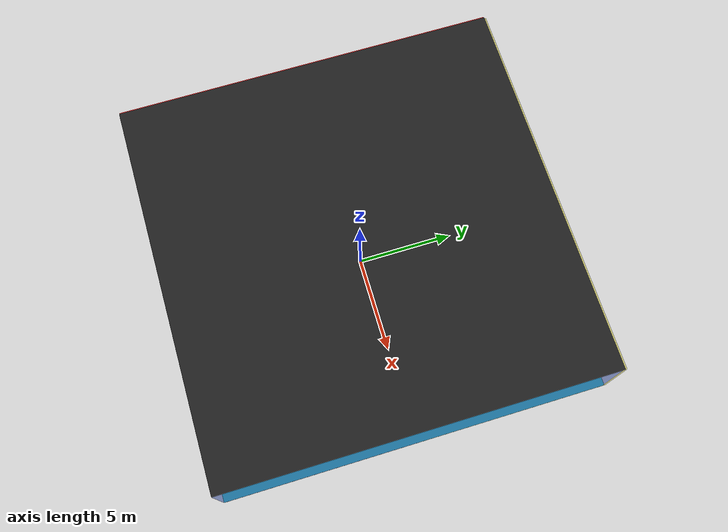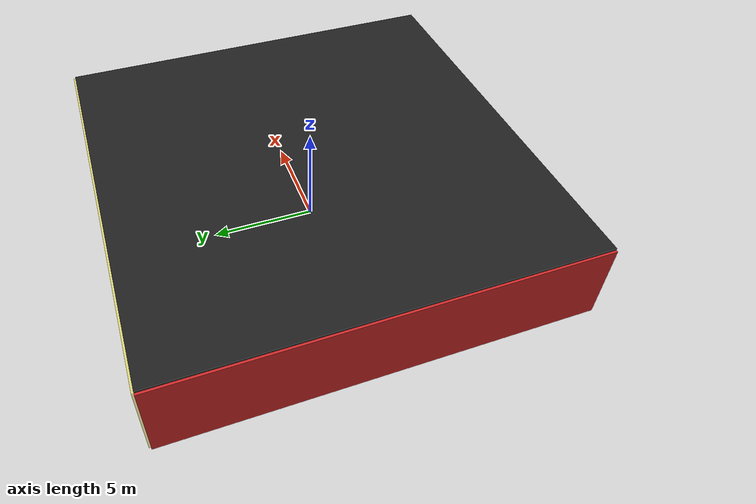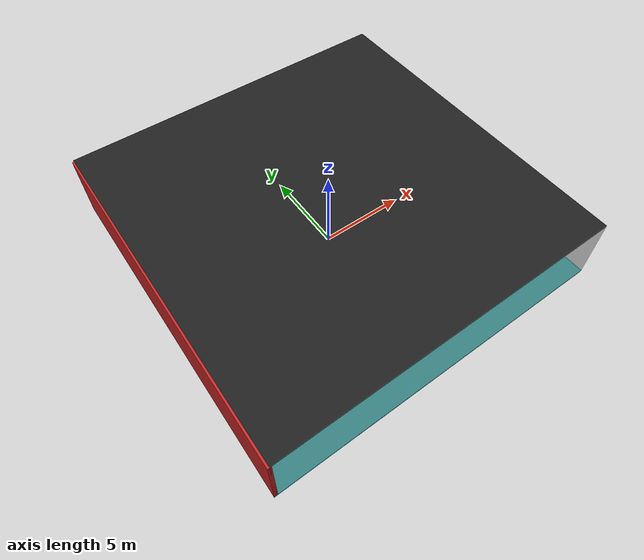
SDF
<sdf version="1.4">
 <world name="default">
  <physics type="ode">
   <max_step_size>0.001</max_step_size>
   <real_time_factor>1</real_time_factor>
   <real_time_update_rate>1000</real_time_update_rate>
   <gravity>0 0 -9.8</gravity>
  </physics>
  <scene><ambient>0.4 0.4 0.4 1</ambient><background>0.7 0.7 0.7 1</background><shadows>1</shadows></scene>
  <model name="Surrounding">
   <static>1</static>
   <link name="Ceiling">
    <collision name="Ceiling_Collision"><geometry><box><size>20 20 0.1</size></box></geometry></collision>
    <visual name="Ceiling_Visual">
     <geometry><box><size>20 20 0.1</size></box></geometry>
     <material>
      <script><uri>file://media/materials/scripts/gazebo.material</uri><name>Gazebo/FlatBlack</name></script>
     </material>
    </visual>
    <pose>0 0 4.05 0 0 0</pose>
   </link>
   <link name="Wall_South">
    <collision name="Wall_South_Collision">
     <geometry><box><size>20 0 4</size></box></geometry>
     <pose>0 0 2 0 -0 0</pose>
    </collision>
    <visual name="Wall_South_Visual">
     <pose>0 0 2 0 -0 0</pose>
     <geometry><box><size>20 0 4</size></box></geometry>
     <material>
      <script><uri>file://media/materials/scripts/gazebo.material</uri><name>Gazebo/GreyTransparent</name></script>
     </material>
    </visual>
    <velocity_decay><linear>0</linear><angular>0</angular></velocity_decay>
    <pose>0 -10 0 0 -0 0</pose>
   </link>
   <link name="Wall_East">
    <collision name="Wall_21_Collision">
     <geometry><box><size>20 0 4</size></box></geometry>
     <pose>0 0 2 0 -0 0</pose>
    </collision>
    <visual name="Wall_21_Visual">
     <pose>0 0 2 0 -0 0</pose>
     <geometry><box><size>20 0 4</size></box></geometry>
     <material>
      <script><uri>file://media/materials/scripts/gazebo.material</uri><name>Gazebo/BlueTransparent</name></script>
     </material>
    </visual>
    <velocity_decay><linear>0</linear><angular>0</angular></velocity_decay>
    <pose>10 0 0 0 -0 1.5708</pose>
   </link>
   <link name="Wall_North">
    <collision name="Wall_22_Collision">
     <geometry><box><size>20 0.2 4</size></box></geometry>
     <pose>0 0 2 0 -0 0</pose>
    </collision>
    <visual name="Wall_22_Visual">
     <pose>0 0 2 0 -0 0</pose>
     <geometry><box><size>20 0.2 4</size></box></geometry>
     <material>
      <script>
       <uri>file://media/materials/scripts/gazebo.material</uri>
       <name>Gazebo/YellowTransparent</name>
      </script>
     </material>
    </visual>
    <velocity_decay><linear>0</linear><angular>0</angular></velocity_decay>
    <pose>0 10 0 0 -0 0</pose>
   </link>
   <link name="Wall_West">
    <collision name="Wall_23_Collision">
     <geometry><box><size>20 0.2 4</size></box></geometry>
     <pose>0 0 2 0 -0 0</pose>
    </collision>
    <visual name="Wall_23_Visual">
     <pose>0 0 2 0 -0 0</pose>
     <geometry><box><size>20 0.2 4</size></box></geometry>
     <material>
      <script><uri>file://media/materials/scripts/gazebo.material</uri><name>Gazebo/Red</name></script>
     </material>
    </visual>
    <velocity_decay><linear>0</linear><angular>0</angular></velocity_decay>
    <pose>-10 0 0 0 0 -1.5708</pose>
   </link>
   <link name="Ground_link">
    <collision name="collision">
     <pose>0 0 .05 0 -0 0</pose>
     <geometry><box><size>20 20 0.1</size></box></geometry>
    </collision>
    <visual name="visual">
     <pose>0 0 .05 0 -0 0</pose>
     <geometry><box><size>20 20 0.1</size></box></geometry>
     <material>
      <script><uri>file://media/materials/scripts/gazebo.material</uri><name>Gazebo/TurquoiseGlow</name></script>
     </material>
    </visual>
   </link>
   <static>1</static>
  </model>
  <spherical_coordinates>
   <surface_model>EARTH_WGS84</surface_model>
   <latitude_deg>0</latitude_deg>
   <longitude_deg>0</longitude_deg>
   <elevation>0</elevation>
   <heading_deg>0</heading_deg>
  </spherical_coordinates>
  <light name="lightball_0" type="diffuse">
   <diffuse>0.8 0.8 0.8 1</diffuse>
   <specular>0.2 0.2 0.2 1</specular>
   <attenuation>
    <range>100</range>
    <constant>0.7</constant>
    <linear>0.01</linear>
    <quadratic>0.001</quadratic>
   </attenuation>
   <direction>-0.5 0.1 -0.9</direction>
   <pose>-5.689830945 1.27498893622 1.31414505226 0 0 0</pose>
  </light>
  <light name="lightball_1" type="diffuse">
   <diffuse>0.8 0.8 0.8 1</diffuse>
   <specular>0.2 0.2 0.2 1</specular>
   <attenuation>
    <range>100</range>
    <constant>0.7</constant>
    <linear>0.01</linear>
    <quadratic>0.001</quadratic>
   </attenuation>
   <direction>-0.5 0.1 -0.9</direction>
   <pose>1.24558037728 3.30781845418 3.57074247549 0 0 0</pose>
  </light>
  <light name="lightball_2" type="diffuse">
   <diffuse>0.8 0.8 0.8 1</diffuse>
   <specular>0.2 0.2 0.2 1</specular>
   <attenuation>
    <range>100</range>
    <constant>0.7</constant>
    <linear>0.01</linear>
    <quadratic>0.001</quadratic>
   </attenuation>
   <direction>-0.5 0.1 -0.9</direction>
   <pose>-7.43638463671 -6.13525372021 0.506892190045 0 0 0</pose>
  </light>
  <light name="lightball_3" type="diffuse">
   <diffuse>0.8 0.8 0.8 1</diffuse>
   <specular>0.2 0.2 0.2 1</specular>
   <attenuation>
    <range>100</range>
    <constant>0.7</constant>
    <linear>0.01</linear>
    <quadratic>0.001</quadratic>
   </attenuation>
   <direction>-0.5 0.1 -0.9</direction>
   <pose>-4.72129401071 0.300453158486 1.33083471222 0 0 0</pose>
  </light>
  <light name="lightball_4" type="diffuse">
   <diffuse>0.8 0.8 0.8 1</diffuse>
   <specular>0.2 0.2 0.2 1</specular>
   <attenuation>
    <range>100</range>
    <constant>0.7</constant>
    <linear>0.01</linear>
    <quadratic>0.001</quadratic>
   </attenuation>
   <direction>-0.5 0.1 -0.9</direction>
   <pose>-2.73581890545 -6.81310661011 3.47075848465 0 0 0</pose>
  </light>
  <light name="lightball_5" type="diffuse">
   <diffuse>0.8 0.8 0.8 1</diffuse>
   <specular>0.2 0.2 0.2 1</specular>
   <attenuation>
    <range>100</range>
    <constant>0.7</constant>
    <linear>0.01</linear>
    <quadratic>0.001</quadratic>
   </attenuation>
   <direction>-0.5 0.1 -0.9</direction>
   <pose>-0.168866686456 -5.07938208215 2.38442915341 0 0 0</pose>
  </light>
  <light name="lightball_6" type="diffuse">
   <diffuse>0.8 0.8 0.8 1</diffuse>
   <specular>0.2 0.2 0.2 1</specular>
   <attenuation>
    <range>100</range>
    <constant>0.7</constant>
    <linear>0.01</linear>
    <quadratic>0.001</quadratic>
   </attenuation>
   <direction>-0.5 0.1 -0.9</direction>
   <pose>1.1349614701 4.49048277761 2.25619093889 0 0 0</pose>
  </light>
  <light name="lightball_7" type="diffuse">
   <diffuse>0.8 0.8 0.8 1</diffuse>
   <specular>0.2 0.2 0.2 1</specular>
   <attenuation>
    <range>100</range>
    <constant>0.7</constant>
    <linear>0.01</linear>
    <quadratic>0.001</quadratic>
   </attenuation>
   <direction>-0.5 0.1 -0.9</direction>
   <pose>6.36013546509 -1.46467590522 3.09666449172 0 0 0</pose>
  </light>
  <light name="lightball_8" type="diffuse">
   <diffuse>0.8 0.8 0.8 1</diffuse>
   <specular>0.2 0.2 0.2 1</specular>
   <attenuation>
    <range>100</range>
    <constant>0.7</constant>
    <linear>0.01</linear>
    <quadratic>0.001</quadratic>
   </attenuation>
   <direction>-0.5 0.1 -0.9</direction>
   <pose>-4.41033659393 7.59188813424 0.914810344452 0 0 0</pose>
  </light>
  <light name="lightball_9" type="diffuse">
   <diffuse>0.8 0.8 0.8 1</diffuse>
   <specular>0.2 0.2 0.2 1</specular>
   <attenuation>
    <range>100</range>
    <constant>0.7</constant>
    <linear>0.01</linear>
    <quadratic>0.001</quadratic>
   </attenuation>
   <direction>-0.5 0.1 -0.9</direction>
   <pose>1.70634957641 -9.30466416732 2.03398024806 0 0 0</pose>
  </light>
  <light name="lightball_10" type="diffuse">
   <diffuse>0.8 0.8 0.8 1</diffuse>
   <specular>0.2 0.2 0.2 1</specular>
   <attenuation>
    <range>100</range>
    <constant>0.7</constant>
    <linear>0.01</linear>
    <quadratic>0.001</quadratic>
   </attenuation>
   <direction>-0.5 0.1 -0.9</direction>
   <pose>-6.04124348831 -4.96461068438 2.43318818408 0 0 0</pose>
  </light>
  <include>
   <uri>model://construction_cone</uri>
   <pose>-2.19618509413 -5.5627421783 0 0 0 1.51290839447</pose>
  </include>
  <include><uri>model://cabinet</uri><pose>2.13912121251 -5.01180060888 0 0 0 2.04455104689</pose></include>
  <include><uri>model://cabinet</uri><pose>8.43467663265 1.29958304432 0 0 0 2.37422476634</pose></include>
 </world>
</sdf>

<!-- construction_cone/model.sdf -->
<sdf version="1.5">
  <model name="Construction Cone">
    <link name="link">
      <collision name="collision">
        <geometry>
          <mesh>
            <scale>10 10 10</scale>
            <uri>file://isr-testbed/construction_cone/meshes/construction_cone.dae</uri>
          </mesh>
        </geometry>
      </collision>
      <visual name="visual">
        <geometry>
          <mesh>
            <scale>10 10 10</scale>
            <uri>file://isr-testbed/construction_cone/meshes/construction_cone.dae</uri>
          </mesh>
        </geometry>
      </visual>
    </link>
  </model>
</sdf>

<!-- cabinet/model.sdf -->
<sdf version="1.5">
  <model name="cabinet">
    <static>true</static>
    <link name="cabinet_bottom_plate">
      <inertial>
        <pose>0 0 -1 0 0 0</pose>
        <inertia>
          <ixx>2.050000</ixx>
          <ixy>0</ixy>
          <ixz>0</ixz>
          <iyy>2.050000</iyy>
          <iyz>0</iyz>
          <izz>2.050000</izz>
        </inertia>
        <mass>25.000000</mass>
      </inertial>
      <collision name="cabinet_bottom_plate_geom">
        <pose>0 0 0.010000 0 0 0</pose>
        <geometry>
          <box>
            <size>0.450000 0.450000 0.020000</size>
          </box>
        </geometry>
      </collision>
      <visual name="cabinet_bottom_plate_geom_visual">
        <pose>0 0 0.010000 0 0 0</pose>
        <geometry>
          <box>
            <size>0.450000 0.450000 0.020000</size>
          </box>
        </geometry>
        <material>
          <script>
            <uri>model://media/materials/scripts/gazebo.material</uri>
            <name>Gazebo/Wood</name>
          </script>
        </material>
      </visual>
      <collision name="cabinet_bottom_plate_geom_cabinet_back_plate">
        <pose>0.235000 0 0.510000 0 0 0</pose>
        <geometry>
          <box>
            <size>0.020000 0.450000 1.020000</size>
          </box>
        </geometry>
      </collision>
      <visual name="cabinet_bottom_plate_geom_cabinet_back_plate_visual">
        <pose>0.235000 0 0.510000 0 0 0</pose>
        <geometry>
          <box>
            <size>0.020000 0.450000 1.020000</size>
          </box>
        </geometry>
        <material>
          <script>
            <uri>model://media/materials/scripts/gazebo.material</uri>
            <name>Gazebo/Wood</name>
          </script>
        </material>
      </visual>
      <collision name="cabinet_bottom_plate_geom_cabinet_left_plate">
        <pose>0 0.235000 0.510000 0 0 0</pose>
        <geometry>
          <box>
            <size>0.450000 0.020000 1.020000</size>
          </box>
        </geometry>
      </collision>
      <visual name="cabinet_bottom_plate_geom_cabinet_left_plate_visual">
        <pose>0 0.235000 0.510000 0 0 0</pose>
        <geometry>
          <box>
            <size>0.450000 0.020000 1.020000</size>
          </box>
        </geometry>
        <material>
          <script>
            <uri>model://media/materials/scripts/gazebo.material</uri>
            <name>Gazebo/Wood</name>
          </script>
        </material>
      </visual>
      <collision name="cabinet_bottom_plate_geom_cabinet_middle_plate">
        <pose>0 0 0.510000 0 0 0</pose>
        <geometry>
          <box>
            <size>0.450000 0.450000 0.020000</size>
          </box>
        </geometry>
      </collision>
      <visual name="cabinet_bottom_plate_geom_cabinet_middle_plate_visual">
        <pose>0 0 0.510000 0 0 0</pose>
        <geometry>
          <box>
            <size>0.450000 0.450000 0.020000</size>
          </box>
        </geometry>
        <material>
          <script>
            <uri>model://media/materials/scripts/gazebo.material</uri>
            <name>Gazebo/Wood</name>
          </script>
        </material>
      </visual>
      <collision name="cabinet_bottom_plate_geom_cabinet_right_plate">
        <pose>0 -0.235000 0.510000 0 0 0</pose>
        <geometry>
          <box>
            <size>0.450000 0.020000 1.020000</size>
          </box>
        </geometry>
      </collision>
      <visual name="cabinet_bottom_plate_geom_cabinet_right_plate_visual">
        <pose>0 -0.235000 0.510000 0 0 0</pose>
        <geometry>
          <box>
            <size>0.450000 0.020000 1.020000</size>
          </box>
        </geometry>
        <material>
          <script>
            <uri>model://media/materials/scripts/gazebo.material</uri>
            <name>Gazebo/Wood</name>
          </script>
        </material>
      </visual>
      <collision name="cabinet_bottom_plate_geom_cabinet_top_plate">
        <pose>0 0 1.010000 0 0 0</pose>
        <geometry>
          <box>
            <size>0.450000 0.450000 0.020000</size>
          </box>
        </geometry>
      </collision>
      <visual name="cabinet_bottom_plate_geom_cabinet_top_plate_visual">
        <pose>0 0 1.010000 0 0 0</pose>
        <geometry>
          <box>
            <size>0.450000 0.450000 0.020000</size>
          </box>
        </geometry>
        <material>
          <script>
            <uri>model://media/materials/scripts/gazebo.material</uri>
            <name>Gazebo/Wood</name>
          </script>
        </material>
      </visual>
    </link>
  </model>
</sdf>
